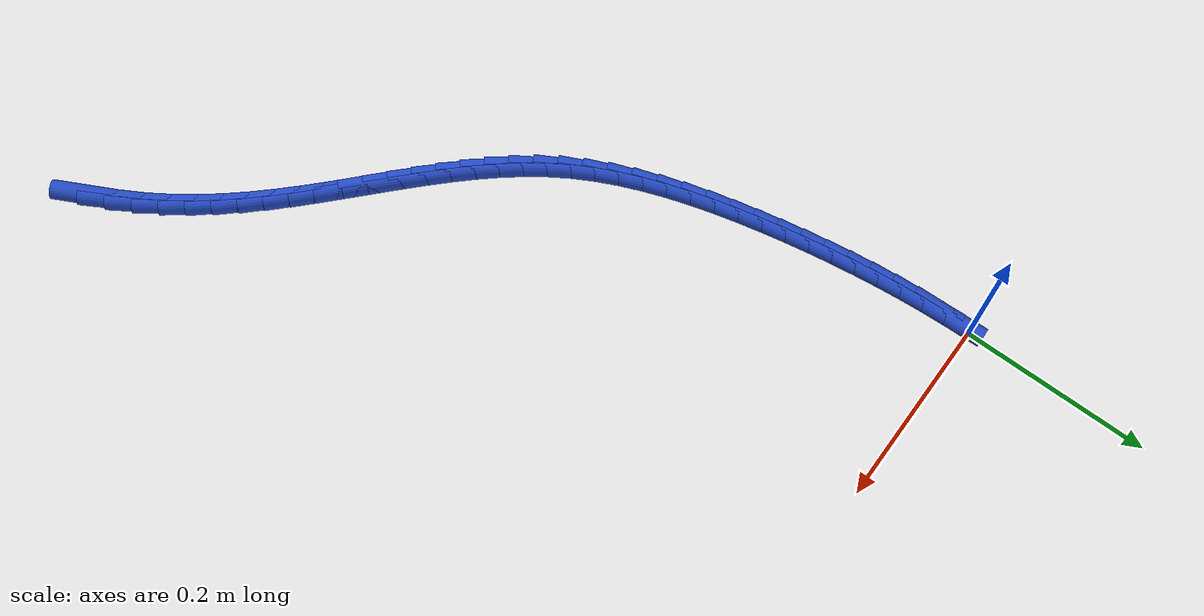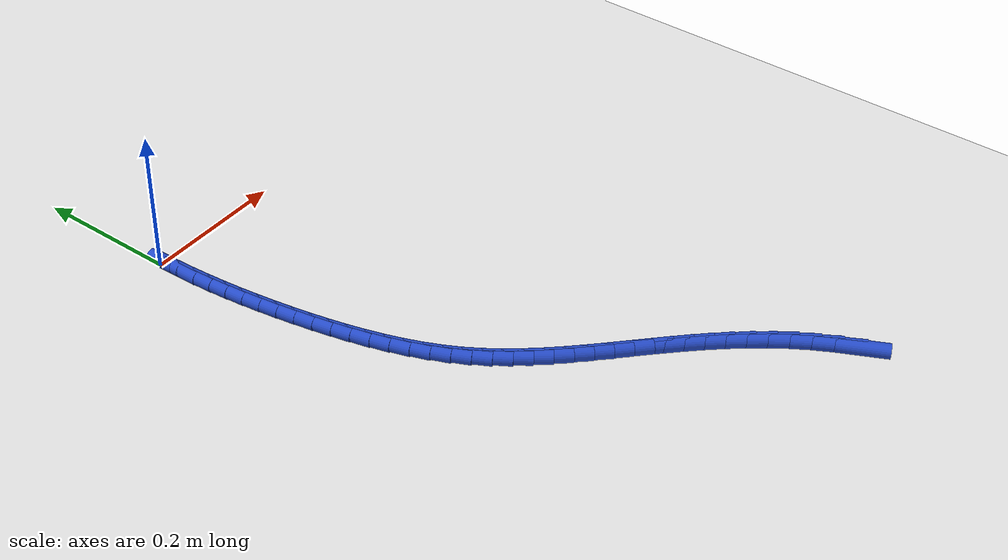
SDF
<sdf version="1.6">
 <world name="default">
  <model name="ground_plane">
   <static>1</static>
   <link name="link">
    <collision name="collision">
     <geometry><plane><normal>0 0 1</normal><size>100 100</size></plane></geometry>
     <surface><friction><ode><mu>100</mu><mu2>50</mu2></ode></friction></surface>
    </collision>
    <visual name="visual">
     <cast_shadows>0</cast_shadows>
     <geometry><plane><normal>0 0 1</normal><size>100 100</size></plane></geometry>
     <material>
      <script><uri>file://media/materials/scripts/gazebo.material</uri><name>Gazebo/WhiteGlow</name></script>
     </material>
    </visual>
   </link>
  </model>
  <model name="line">
   <link name="link_254">
    <pose>0.4013810922421126 -0.7953199451911965 0.01 0 1.57 -1.1062841454223116</pose>
    <collision name="collision">
     <geometry><cylinder><radius>0.01</radius><length>0.08</length></cylinder></geometry>
    </collision>
    <visual name="visual">
     <material>
      <script><name>Gazebo/Blue</name><uri>file://media/materials/scripts/gazebo.material</uri></script>
     </material>
     <geometry><cylinder><radius>0.01</radius><length>0.08</length></cylinder></geometry>
    </visual>
   </link>
   <link name="link_255">
    <pose>0.38863120259834727 -0.7698751867899448 0.01 0 1.57 -1.0586398952581273</pose>
    <collision name="collision">
     <geometry><cylinder><radius>0.01</radius><length>0.08</length></cylinder></geometry>
    </collision>
    <visual name="visual">
     <material>
      <script><name>Gazebo/Blue</name><uri>file://media/materials/scripts/gazebo.material</uri></script>
     </material>
     <geometry><cylinder><radius>0.01</radius><length>0.08</length></cylinder></geometry>
    </visual>
   </link>
   <link name="link_256">
    <pose>0.37493937099155383 -0.7455208728874998 0.01 0 1.57 -1.002110671850994</pose>
    <collision name="collision">
     <geometry><cylinder><radius>0.01</radius><length>0.08</length></cylinder></geometry>
    </collision>
    <visual name="visual">
     <material>
      <script><name>Gazebo/Blue</name><uri>file://media/materials/scripts/gazebo.material</uri></script>
     </material>
     <geometry><cylinder><radius>0.01</radius><length>0.08</length></cylinder></geometry>
    </visual>
   </link>
   <link name="link_257">
    <pose>0.36020127997146206 -0.7224607459428068 0.01 0 1.57 -0.9496097992040655</pose>
    <collision name="collision">
     <geometry><cylinder><radius>0.01</radius><length>0.08</length></cylinder></geometry>
    </collision>
    <visual name="visual">
     <material>
      <script><name>Gazebo/Blue</name><uri>file://media/materials/scripts/gazebo.material</uri></script>
     </material>
     <geometry><cylinder><radius>0.01</radius><length>0.08</length></cylinder></geometry>
    </visual>
   </link>
   <link name="link_258">
    <pose>0.344539541079699 -0.7005776946694061 0.01 0 1.57 -0.9027436422045014</pose>
    <collision name="collision">
     <geometry><cylinder><radius>0.01</radius><length>0.08</length></cylinder></geometry>
    </collision>
    <visual name="visual">
     <material>
      <script><name>Gazebo/Blue</name><uri>file://media/materials/scripts/gazebo.material</uri></script>
     </material>
     <geometry><cylinder><radius>0.01</radius><length>0.08</length></cylinder></geometry>
    </visual>
   </link>
   <link name="link_259">
    <pose>0.32809165299849263 -0.6797335589285941 0.01 0 1.57 -0.862106102845079</pose>
    <collision name="collision">
     <geometry><cylinder><radius>0.01</radius><length>0.08</length></cylinder></geometry>
    </collision>
    <visual name="visual">
     <material>
      <script><name>Gazebo/Blue</name><uri>file://media/materials/scripts/gazebo.material</uri></script>
     </material>
     <geometry><cylinder><radius>0.01</radius><length>0.08</length></cylinder></geometry>
    </visual>
   </link>
   <link name="link_260">
    <pose>0.3109951144100711 -0.6597901785816661 0.01 0 1.57 -0.8281326590651976</pose>
    <collision name="collision">
     <geometry><cylinder><radius>0.01</radius><length>0.08</length></cylinder></geometry>
    </collision>
    <visual name="visual">
     <material>
      <script><name>Gazebo/Blue</name><uri>file://media/materials/scripts/gazebo.material</uri></script>
     </material>
     <geometry><cylinder><radius>0.01</radius><length>0.08</length></cylinder></geometry>
    </visual>
   </link>
   <link name="link_261">
    <pose>0.2933874239966627 -0.6406093934899189 0.01 0 1.57 -0.8011342129696954</pose>
    <collision name="collision">
     <geometry><cylinder><radius>0.01</radius><length>0.08</length></cylinder></geometry>
    </collision>
    <visual name="visual">
     <material>
      <script><name>Gazebo/Blue</name><uri>file://media/materials/scripts/gazebo.material</uri></script>
     </material>
     <geometry><cylinder><radius>0.01</radius><length>0.08</length></cylinder></geometry>
    </visual>
   </link>
   <link name="link_262">
    <pose>0.2754060804404955 -0.622053043514648 0.01 0 1.57 -0.7813355547440901</pose>
    <collision name="collision">
     <geometry><cylinder><radius>0.01</radius><length>0.08</length></cylinder></geometry>
    </collision>
    <visual name="visual">
     <material>
      <script><name>Gazebo/Blue</name><uri>file://media/materials/scripts/gazebo.material</uri></script>
     </material>
     <geometry><cylinder><radius>0.01</radius><length>0.08</length></cylinder></geometry>
    </visual>
   </link>
   <link name="link_263">
    <pose>0.25718858242379794 -0.60398296851715 0.01 0 1.57 -0.7689117345583343</pose>
    <collision name="collision">
     <geometry><cylinder><radius>0.01</radius><length>0.08</length></cylinder></geometry>
    </collision>
    <visual name="visual">
     <material>
      <script><name>Gazebo/Blue</name><uri>file://media/materials/scripts/gazebo.material</uri></script>
     </material>
     <geometry><cylinder><radius>0.01</radius><length>0.08</length></cylinder></geometry>
    </visual>
   </link>
   <link name="link_264">
    <pose>0.2388724286287979 -0.5862610083587207 0.01 0 1.57 -0.7640177936301716</pose>
    <collision name="collision">
     <geometry><cylinder><radius>0.01</radius><length>0.08</length></cylinder></geometry>
    </collision>
    <visual name="visual">
     <material>
      <script><name>Gazebo/Blue</name><uri>file://media/materials/scripts/gazebo.material</uri></script>
     </material>
     <geometry><cylinder><radius>0.01</radius><length>0.08</length></cylinder></geometry>
    </visual>
   </link>
   <link name="link_265">
    <pose>0.22059511773772436 -0.5687490029006574 0.01 0 1.57 -0.7668089580649106</pose>
    <collision name="collision">
     <geometry><cylinder><radius>0.01</radius><length>0.08</length></cylinder></geometry>
    </collision>
    <visual name="visual">
     <material>
      <script><name>Gazebo/Blue</name><uri>file://media/materials/scripts/gazebo.material</uri></script>
     </material>
     <geometry><cylinder><radius>0.01</radius><length>0.08</length></cylinder></geometry>
    </visual>
   </link>
   <link name="link_266">
    <pose>0.2024941484328042 -0.5513087920042541 0.01 0 1.57 -0.7774492487089567</pose>
    <collision name="collision">
     <geometry><cylinder><radius>0.01</radius><length>0.08</length></cylinder></geometry>
    </collision>
    <visual name="visual">
     <material>
      <script><name>Gazebo/Blue</name><uri>file://media/materials/scripts/gazebo.material</uri></script>
     </material>
     <geometry><cylinder><radius>0.01</radius><length>0.08</length></cylinder></geometry>
    </visual>
   </link>
   <link name="link_267">
    <pose>0.18470701939626624 -0.5338022155308081 0.01 0 1.57 -0.796106609510937</pose>
    <collision name="collision">
     <geometry><cylinder><radius>0.01</radius><length>0.08</length></cylinder></geometry>
    </collision>
    <visual name="visual">
     <material>
      <script><name>Gazebo/Blue</name><uri>file://media/materials/scripts/gazebo.material</uri></script>
     </material>
     <geometry><cylinder><radius>0.01</radius><length>0.08</length></cylinder></geometry>
    </visual>
   </link>
   <link name="link_268">
    <pose>0.16737122931033868 -0.5160911133416155 0.01 0 1.57 -0.8229324748397069</pose>
    <collision name="collision">
     <geometry><cylinder><radius>0.01</radius><length>0.08</length></cylinder></geometry>
    </collision>
    <visual name="visual">
     <material>
      <script><name>Gazebo/Blue</name><uri>file://media/materials/scripts/gazebo.material</uri></script>
     </material>
     <geometry><cylinder><radius>0.01</radius><length>0.08</length></cylinder></geometry>
    </visual>
   </link>
   <link name="link_269">
    <pose>0.1506242768572497 -0.4980373252979722 0.01 0 1.57 -0.8580237784744226</pose>
    <collision name="collision">
     <geometry><cylinder><radius>0.01</radius><length>0.08</length></cylinder></geometry>
    </collision>
    <visual name="visual">
     <material>
      <script><name>Gazebo/Blue</name><uri>file://media/materials/scripts/gazebo.material</uri></script>
     </material>
     <geometry><cylinder><radius>0.01</radius><length>0.08</length></cylinder></geometry>
    </visual>
   </link>
   <link name="link_270">
    <pose>0.13460366071922747 -0.47950269126117445 0.01 0 1.57 -0.9013665865411272</pose>
    <collision name="collision">
     <geometry><cylinder><radius>0.01</radius><length>0.08</length></cylinder></geometry>
    </collision>
    <visual name="visual">
     <material>
      <script><name>Gazebo/Blue</name><uri>file://media/materials/scripts/gazebo.material</uri></script>
     </material>
     <geometry><cylinder><radius>0.01</radius><length>0.08</length></cylinder></geometry>
    </visual>
   </link>
   <link name="link_271">
    <pose>0.11944687957850017 -0.46034905109251817 0.01 0 1.57 -0.9527637944845817</pose>
    <collision name="collision">
     <geometry><cylinder><radius>0.01</radius><length>0.08</length></cylinder></geometry>
    </collision>
    <visual name="visual">
     <material>
      <script><name>Gazebo/Blue</name><uri>file://media/materials/scripts/gazebo.material</uri></script>
     </material>
     <geometry><cylinder><radius>0.01</radius><length>0.08</length></cylinder></geometry>
    </visual>
   </link>
   <link name="link_272">
    <pose>0.10529143211729604 -0.4404382446532998 0.01 0 1.57 -1.011755355780328</pose>
    <collision name="collision">
     <geometry><cylinder><radius>0.01</radius><length>0.08</length></cylinder></geometry>
    </collision>
    <visual name="visual">
     <material>
      <script><name>Gazebo/Blue</name><uri>file://media/materials/scripts/gazebo.material</uri></script>
     </material>
     <geometry><cylinder><radius>0.01</radius><length>0.08</length></cylinder></geometry>
    </visual>
   </link>
   <link name="link_273">
    <pose>0.09227481695030602 -0.4196321118837983 0.01 0 1.57 -1.0752415513311204</pose>
    <collision name="collision">
     <geometry><cylinder><radius>0.01</radius><length>0.08</length></cylinder></geometry>
    </collision>
    <visual name="visual">
     <material>
      <script><name>Gazebo/Blue</name><uri>file://media/materials/scripts/gazebo.material</uri></script>
     </material>
     <geometry><cylinder><radius>0.01</radius><length>0.08</length></cylinder></geometry>
    </visual>
   </link>
   <link name="link_274">
    <pose>0.08049470630768299 -0.39783906879943637 0.01 0 1.57 -1.1338058122839823</pose>
    <collision name="collision">
     <geometry><cylinder><radius>0.01</radius><length>0.08</length></cylinder></geometry>
    </collision>
    <visual name="visual">
     <material>
      <script><name>Gazebo/Blue</name><uri>file://media/materials/scripts/gazebo.material</uri></script>
     </material>
     <geometry><cylinder><radius>0.01</radius><length>0.08</length></cylinder></geometry>
    </visual>
   </link>
   <link name="link_275">
    <pose>0.0698951306492192 -0.37514721206514495 0.01 0 1.57 -1.1855821660011618</pose>
    <collision name="collision">
     <geometry><cylinder><radius>0.01</radius><length>0.08</length></cylinder></geometry>
    </collision>
    <visual name="visual">
     <material>
      <script><name>Gazebo/Blue</name><uri>file://media/materials/scripts/gazebo.material</uri></script>
     </material>
     <geometry><cylinder><radius>0.01</radius><length>0.08</length></cylinder></geometry>
    </visual>
   </link>
   <link name="link_276">
    <pose>0.06038307594166956 -0.3516879610604667 0.01 0 1.57 -1.2310111029392754</pose>
    <collision name="collision">
     <geometry><cylinder><radius>0.01</radius><length>0.08</length></cylinder></geometry>
    </collision>
    <visual name="visual">
     <material>
      <script><name>Gazebo/Blue</name><uri>file://media/materials/scripts/gazebo.material</uri></script>
     </material>
     <geometry><cylinder><radius>0.01</radius><length>0.08</length></cylinder></geometry>
    </visual>
   </link>
   <link name="link_277">
    <pose>0.05186552815178888 -0.32759273516494364 0.01 0 1.57 -1.2705570162613962</pose>
    <collision name="collision">
     <geometry><cylinder><radius>0.01</radius><length>0.08</length></cylinder></geometry>
    </collision>
    <visual name="visual">
     <material>
      <script><name>Gazebo/Blue</name><uri>file://media/materials/scripts/gazebo.material</uri></script>
     </material>
     <geometry><cylinder><radius>0.01</radius><length>0.08</length></cylinder></geometry>
    </visual>
   </link>
   <link name="link_278">
    <pose>0.04424947324633205 -0.30299295375811885 0.01 0 1.57 -1.3046642811678804</pose>
    <collision name="collision">
     <geometry><cylinder><radius>0.01</radius><length>0.08</length></cylinder></geometry>
    </collision>
    <visual name="visual">
     <material>
      <script><name>Gazebo/Blue</name><uri>file://media/materials/scripts/gazebo.material</uri></script>
     </material>
     <geometry><cylinder><radius>0.01</radius><length>0.08</length></cylinder></geometry>
    </visual>
   </link>
   <link name="link_279">
    <pose>0.037441897192053916 -0.2780200362195345 0.01 0 1.57 -1.3337294594527656</pose>
    <collision name="collision">
     <geometry><cylinder><radius>0.01</radius><length>0.08</length></cylinder></geometry>
    </collision>
    <visual name="visual">
     <material>
      <script><name>Gazebo/Blue</name><uri>file://media/materials/scripts/gazebo.material</uri></script>
     </material>
     <geometry><cylinder><radius>0.01</radius><length>0.08</length></cylinder></geometry>
    </visual>
   </link>
   <link name="link_280">
    <pose>0.0313497859557095 -0.25280540192873385 0.01 0 1.57 -1.3580843446456674</pose>
    <collision name="collision">
     <geometry><cylinder><radius>0.01</radius><length>0.08</length></cylinder></geometry>
    </collision>
    <visual name="visual">
     <material>
      <script><name>Gazebo/Blue</name><uri>file://media/materials/scripts/gazebo.material</uri></script>
     </material>
     <geometry><cylinder><radius>0.01</radius><length>0.08</length></cylinder></geometry>
    </visual>
   </link>
   <link name="link_281">
    <pose>0.02588012550405331 -0.22748047026525783 0.01 0 1.57 -1.3780964521659966</pose>
    <collision name="collision">
     <geometry><cylinder><radius>0.01</radius><length>0.08</length></cylinder></geometry>
    </collision>
    <visual name="visual">
     <material>
      <script><name>Gazebo/Blue</name><uri>file://media/materials/scripts/gazebo.material</uri></script>
     </material>
     <geometry><cylinder><radius>0.01</radius><length>0.08</length></cylinder></geometry>
    </visual>
   </link>
   <link name="link_282">
    <pose>0.020942151306580722 -0.20217323347909694 0.01 0 1.57 -1.3963948982570928</pose>
    <collision name="collision">
     <geometry><cylinder><radius>0.01</radius><length>0.08</length></cylinder></geometry>
    </collision>
    <visual name="visual">
     <material>
      <script><name>Gazebo/Blue</name><uri>file://media/materials/scripts/gazebo.material</uri></script>
     </material>
     <geometry><cylinder><radius>0.01</radius><length>0.08</length></cylinder></geometry>
    </visual>
   </link>
   <link name="link_283">
    <pose>0.016495400320894214 -0.1769350492319191 0.01 0 1.57 -1.4154107543954</pose>
    <collision name="collision">
     <geometry><cylinder><radius>0.01</radius><length>0.08</length></cylinder></geometry>
    </collision>
    <visual name="visual">
     <material>
      <script><name>Gazebo/Blue</name><uri>file://media/materials/scripts/gazebo.material</uri></script>
     </material>
     <geometry><cylinder><radius>0.01</radius><length>0.08</length></cylinder></geometry>
    </visual>
   </link>
   <link name="link_284">
    <pose>0.012548925338705708 -0.1517418375451716 0.01 0 1.57 -1.4351894451601575</pose>
    <collision name="collision">
     <geometry><cylinder><radius>0.01</radius><length>0.08</length></cylinder></geometry>
    </collision>
    <visual name="visual">
     <material>
      <script><name>Gazebo/Blue</name><uri>file://media/materials/scripts/gazebo.material</uri></script>
     </material>
     <geometry><cylinder><radius>0.01</radius><length>0.08</length></cylinder></geometry>
    </visual>
   </link>
   <link name="link_285">
    <pose>0.009113871511461058 -0.12656633071896642 0.01 0 1.57 -1.4556643273197614</pose>
    <collision name="collision">
     <geometry><cylinder><radius>0.01</radius><length>0.08</length></cylinder></geometry>
    </collision>
    <visual name="visual">
     <material>
      <script><name>Gazebo/Blue</name><uri>file://media/materials/scripts/gazebo.material</uri></script>
     </material>
     <geometry><cylinder><radius>0.01</radius><length>0.08</length></cylinder></geometry>
    </visual>
   </link>
   <link name="link_286">
    <pose>0.0062013839906060984 -0.10138126105341577 0.01 0 1.57 -1.476760576589763</pose>
    <collision name="collision">
     <geometry><cylinder><radius>0.01</radius><length>0.08</length></cylinder></geometry>
    </collision>
    <visual name="visual">
     <material>
      <script><name>Gazebo/Blue</name><uri>file://media/materials/scripts/gazebo.material</uri></script>
     </material>
     <geometry><cylinder><radius>0.01</radius><length>0.08</length></cylinder></geometry>
    </visual>
   </link>
   <link name="link_287">
    <pose>0.0038226079275866707 -0.07615936084863169 0.01 0 1.57 -1.4983960223875064</pose>
    <collision name="collision">
     <geometry><cylinder><radius>0.01</radius><length>0.08</length></cylinder></geometry>
    </collision>
    <visual name="visual">
     <material>
      <script><name>Gazebo/Blue</name><uri>file://media/materials/scripts/gazebo.material</uri></script>
     </material>
     <geometry><cylinder><radius>0.01</radius><length>0.08</length></cylinder></geometry>
    </visual>
   </link>
   <link name="link_288">
    <pose>0.001988688473848621 -0.05087336240472633 0.01 0 1.57 -1.5204822303966399</pose>
    <collision name="collision">
     <geometry><cylinder><radius>0.01</radius><length>0.08</length></cylinder></geometry>
    </collision>
    <visual name="visual">
     <material>
      <script><name>Gazebo/Blue</name><uri>file://media/materials/scripts/gazebo.material</uri></script>
     </material>
     <geometry><cylinder><radius>0.01</radius><length>0.08</length></cylinder></geometry>
    </visual>
   </link>
   <link name="link_289">
    <pose>0.0007107707808377878 -0.025495998021811787 0.01 0 1.57 -1.5429258062321498</pose>
    <collision name="collision">
     <geometry><cylinder><radius>0.01</radius><length>0.08</length></cylinder></geometry>
    </collision>
    <visual name="visual">
     <material>
      <script><name>Gazebo/Blue</name><uri>file://media/materials/scripts/gazebo.material</uri></script>
     </material>
     <geometry><cylinder><radius>0.01</radius><length>0.08</length></cylinder></geometry>
    </visual>
   </link>
  </model>
 </world>
</sdf>
